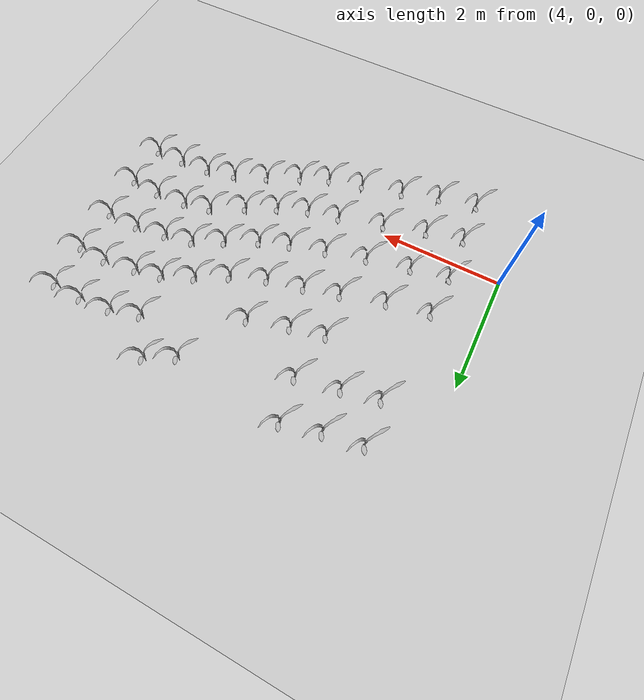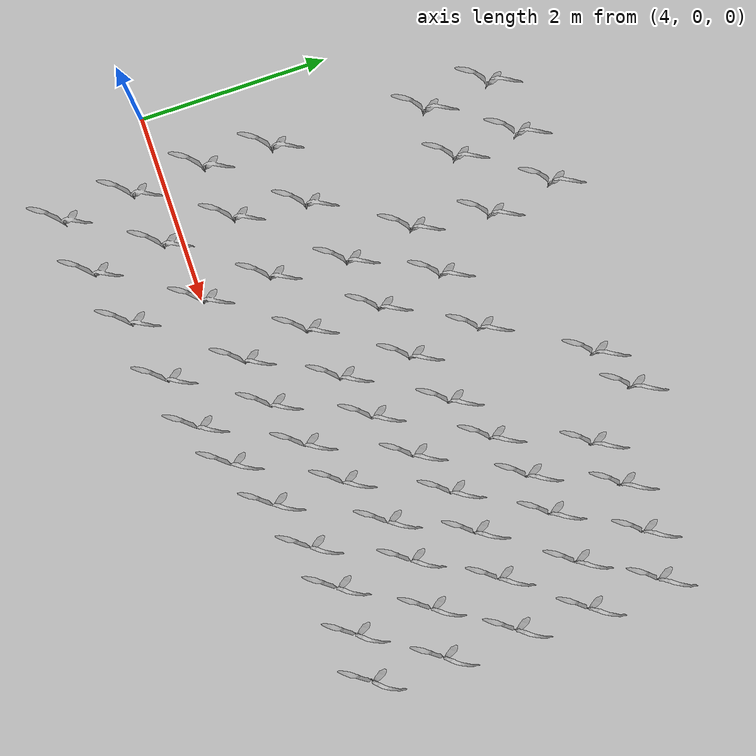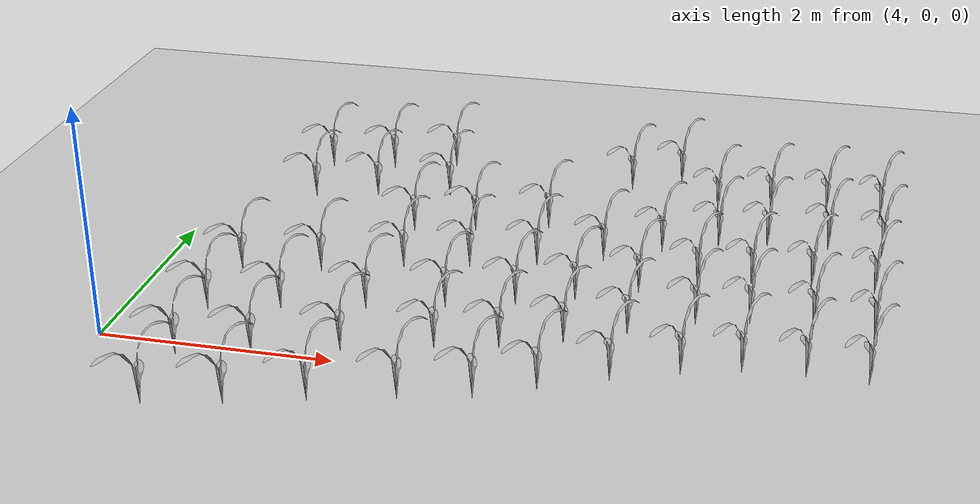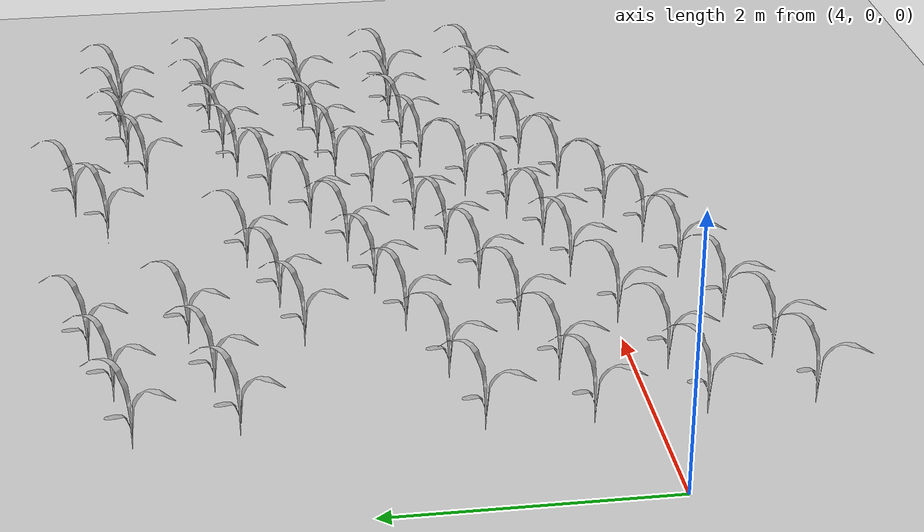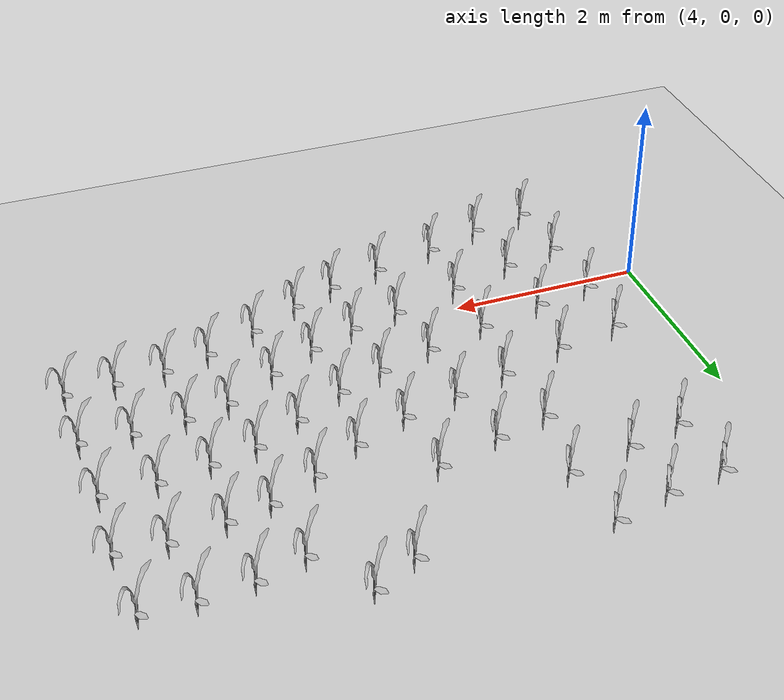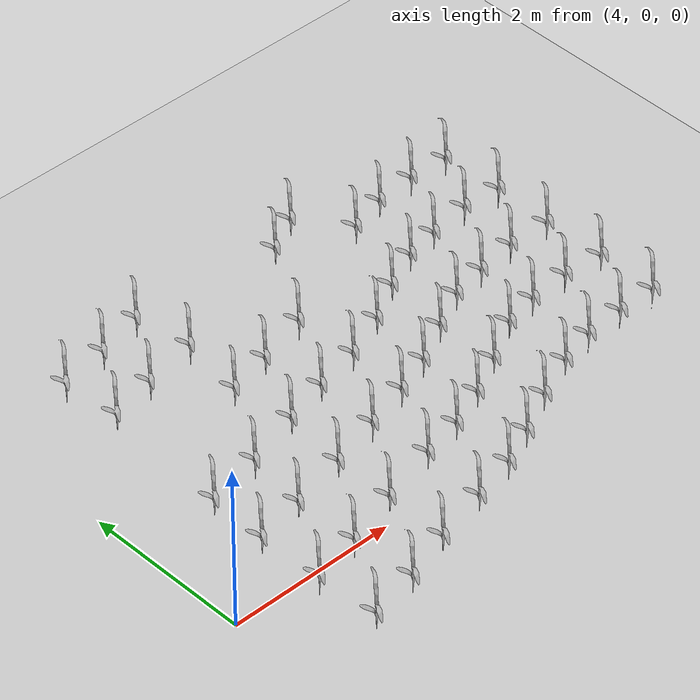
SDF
<sdf version="1.7">
 <world name="default">
  <model name="ground_plane">
   <static>1</static>
   <link name="link">
    <collision name="collision">
     <geometry><plane><normal>0 0 1</normal><size>100 100</size></plane></geometry>
     <surface><friction><ode><mu>100</mu><mu2>50</mu2></ode></friction></surface>
    </collision>
    <visual name="visual">
     <cast_shadows>0</cast_shadows>
     <geometry><plane><normal>0 0 1</normal><size>100 100</size></plane></geometry>
     <material>
      <script><uri>file://media/materials/scripts/gazebo.material</uri><name>Gazebo/Grey</name></script>
     </material>
    </visual>
   </link>
  </model>
  <model name="field_row_full_double">
   <model name="maize_02_clone_142">
    <pose>1.01409 -1.26469 0.000249 0 -0 0</pose>
    <link name="maize_02_link">
     <inertial>
      <pose>0 0 0.01 0 -0 0</pose>
      <mass>0.3</mass>
      <inertia>
       <ixx>0.00334167</ixx>
       <ixy>0</ixy>
       <ixz>0</ixz>
       <iyy>0.00334167</iyy>
       <iyz>0</iyz>
       <izz>1.66667e-05</izz>
      </inertia>
      <pose>0 0 0.1 0 -0 0</pose>
     </inertial>
     <collision name="collision">
      <pose>0 0 0.2 0 -0 0</pose>
      <geometry><box><size>0.02 0.02 0.4</size></box></geometry>
      <surface><friction><ode><mu>10</mu><mu2>10</mu2></ode></friction></surface>
     </collision>
     <visual name="visual">
      <geometry>
       <mesh><uri>model://maize_02/meshes/maize_02.dae</uri><scale>0.683166 0.683166 0.683166</scale></mesh>
      </geometry>
     </visual>
    </link>
   </model>
   <model name="maize_02_clone_143">
    <pose>1.65384 -1.07449 0.000249 0 -0 0</pose>
    <link name="maize_02_link">
     <inertial>
      <pose>0 0 0.01 0 -0 0</pose>
      <mass>0.3</mass>
      <inertia>
       <ixx>0.00334167</ixx>
       <ixy>0</ixy>
       <ixz>0</ixz>
       <iyy>0.00334167</iyy>
       <iyz>0</iyz>
       <izz>1.66667e-05</izz>
      </inertia>
      <pose>0 0 0.1 0 -0 0</pose>
     </inertial>
     <collision name="collision">
      <pose>0 0 0.2 0 -0 0</pose>
      <geometry><box><size>0.02 0.02 0.4</size></box></geometry>
      <surface><friction><ode><mu>10</mu><mu2>10</mu2></ode></friction></surface>
     </collision>
     <visual name="visual">
      <geometry>
       <mesh><uri>model://maize_02/meshes/maize_02.dae</uri><scale>0.683166 0.683166 0.683166</scale></mesh>
      </geometry>
     </visual>
    </link>
   </model>
   <model name="maize_02_clone_144">
    <pose>3.11491 -0.382862 0.000249 0 -0 0</pose>
    <link name="maize_02_link">
     <inertial>
      <pose>0 0 0.01 0 -0 0</pose>
      <mass>0.3</mass>
      <inertia>
       <ixx>0.00334167</ixx>
       <ixy>0</ixy>
       <ixz>0</ixz>
       <iyy>0.00334167</iyy>
       <iyz>0</iyz>
       <izz>1.66667e-05</izz>
      </inertia>
      <pose>0 0 0.1 0 -0 0</pose>
     </inertial>
     <collision name="collision">
      <pose>0 0 0.2 0 -0 0</pose>
      <geometry><box><size>0.02 0.02 0.4</size></box></geometry>
      <surface><friction><ode><mu>10</mu><mu2>10</mu2></ode></friction></surface>
     </collision>
     <visual name="visual">
      <geometry>
       <mesh><uri>model://maize_02/meshes/maize_02.dae</uri><scale>0.683166 0.683166 0.683166</scale></mesh>
      </geometry>
     </visual>
    </link>
   </model>
   <model name="maize_02_clone_145">
    <pose>3.5904 -0.244536 0.000249 0 -0 0</pose>
    <link name="maize_02_link">
     <inertial>
      <pose>0 0 0.01 0 -0 0</pose>
      <mass>0.3</mass>
      <inertia>
       <ixx>0.00334167</ixx>
       <ixy>0</ixy>
       <ixz>0</ixz>
       <iyy>0.00334167</iyy>
       <iyz>0</iyz>
       <izz>1.66667e-05</izz>
      </inertia>
      <pose>0 0 0.1 0 -0 0</pose>
     </inertial>
     <collision name="collision">
      <pose>0 0 0.2 0 -0 0</pose>
      <geometry><box><size>0.02 0.02 0.4</size></box></geometry>
      <surface><friction><ode><mu>10</mu><mu2>10</mu2></ode></friction></surface>
     </collision>
     <visual name="visual">
      <geometry>
       <mesh><uri>model://maize_02/meshes/maize_02.dae</uri><scale>0.683166 0.683166 0.683166</scale></mesh>
      </geometry>
     </visual>
    </link>
   </model>
   <model name="maize_02_clone_146">
    <pose>4.10048 -0.192664 0.000249 0 -0 0</pose>
    <link name="maize_02_link">
     <inertial>
      <pose>0 0 0.01 0 -0 0</pose>
      <mass>0.3</mass>
      <inertia>
       <ixx>0.00334167</ixx>
       <ixy>0</ixy>
       <ixz>0</ixz>
       <iyy>0.00334167</iyy>
       <iyz>0</iyz>
       <izz>1.66667e-05</izz>
      </inertia>
      <pose>0 0 0.1 0 -0 0</pose>
     </inertial>
     <collision name="collision">
      <pose>0 0 0.2 0 -0 0</pose>
      <geometry><box><size>0.02 0.02 0.4</size></box></geometry>
      <surface><friction><ode><mu>10</mu><mu2>10</mu2></ode></friction></surface>
     </collision>
     <visual name="visual">
      <geometry>
       <mesh><uri>model://maize_02/meshes/maize_02.dae</uri><scale>0.683166 0.683166 0.683166</scale></mesh>
      </geometry>
     </visual>
    </link>
   </model>
   <model name="maize_02_clone_147">
    <pose>4.59326 -0.209955 0.000249 0 -0 0</pose>
    <link name="maize_02_link">
     <inertial>
      <pose>0 0 0.01 0 -0 0</pose>
      <mass>0.3</mass>
      <inertia>
       <ixx>0.00334167</ixx>
       <ixy>0</ixy>
       <ixz>0</ixz>
       <iyy>0.00334167</iyy>
       <iyz>0</iyz>
       <izz>1.66667e-05</izz>
      </inertia>
      <pose>0 0 0.1 0 -0 0</pose>
     </inertial>
     <collision name="collision">
      <pose>0 0 0.2 0 -0 0</pose>
      <geometry><box><size>0.02 0.02 0.4</size></box></geometry>
      <surface><friction><ode><mu>10</mu><mu2>10</mu2></ode></friction></surface>
     </collision>
     <visual name="visual">
      <geometry>
       <mesh><uri>model://maize_02/meshes/maize_02.dae</uri><scale>0.683166 0.683166 0.683166</scale></mesh>
      </geometry>
     </visual>
    </link>
   </model>
   <model name="maize_02_clone_152">
    <pose>2.69993 0.179087 0.000249 0 -0 0</pose>
    <link name="maize_02_link">
     <inertial>
      <pose>0 0 0.01 0 -0 0</pose>
      <mass>0.3</mass>
      <inertia>
       <ixx>0.00334167</ixx>
       <ixy>0</ixy>
       <ixz>0</ixz>
       <iyy>0.00334167</iyy>
       <iyz>0</iyz>
       <izz>1.66667e-05</izz>
      </inertia>
      <pose>0 0 0.1 0 -0 0</pose>
     </inertial>
     <collision name="collision">
      <pose>0 0 0.2 0 -0 0</pose>
      <geometry><box><size>0.02 0.02 0.4</size></box></geometry>
      <surface><friction><ode><mu>10</mu><mu2>10</mu2></ode></friction></surface>
     </collision>
     <visual name="visual">
      <geometry>
       <mesh><uri>model://maize_02/meshes/maize_02.dae</uri><scale>0.683166 0.683166 0.683166</scale></mesh>
      </geometry>
     </visual>
    </link>
   </model>
   <model name="maize_02_clone_153">
    <pose>2.25902 -0.062983 0.000249 0 -0 0</pose>
    <link name="maize_02_link">
     <inertial>
      <pose>0 0 0.01 0 -0 0</pose>
      <mass>0.3</mass>
      <inertia>
       <ixx>0.00334167</ixx>
       <ixy>0</ixy>
       <ixz>0</ixz>
       <iyy>0.00334167</iyy>
       <iyz>0</iyz>
       <izz>1.66667e-05</izz>
      </inertia>
      <pose>0 0 0.1 0 -0 0</pose>
     </inertial>
     <collision name="collision">
      <pose>0 0 0.2 0 -0 0</pose>
      <geometry><box><size>0.02 0.02 0.4</size></box></geometry>
      <surface><friction><ode><mu>10</mu><mu2>10</mu2></ode></friction></surface>
     </collision>
     <visual name="visual">
      <geometry>
       <mesh><uri>model://maize_02/meshes/maize_02.dae</uri><scale>0.683166 0.683166 0.683166</scale></mesh>
      </geometry>
     </visual>
    </link>
   </model>
   <model name="maize_02_clone_18">
    <pose>-0.201208 -3.06424 0.000249 0 -0 0</pose>
    <link name="maize_02_link">
     <inertial>
      <pose>0 0 0.01 0 -0 0</pose>
      <mass>0.3</mass>
      <inertia>
       <ixx>0.00334167</ixx>
       <ixy>0</ixy>
       <ixz>0</ixz>
       <iyy>0.00334167</iyy>
       <iyz>0</iyz>
       <izz>1.66667e-05</izz>
      </inertia>
      <pose>0 0 0.1 0 -0 0</pose>
     </inertial>
     <collision name="collision">
      <pose>0 0 0.2 0 -0 0</pose>
      <geometry><box><size>0.02 0.02 0.4</size></box></geometry>
      <surface><friction><ode><mu>10</mu><mu2>10</mu2></ode></friction></surface>
     </collision>
     <visual name="visual">
      <geometry>
       <mesh><uri>model://maize_02/meshes/maize_02.dae</uri><scale>0.683166 0.683166 0.683166</scale></mesh>
      </geometry>
     </visual>
    </link>
   </model>
   <model name="maize_02_clone_19">
    <pose>-0.800069 -3.18604 0.000249 0 -0 0</pose>
    <link name="maize_02_link">
     <inertial>
      <pose>0 0 0.01 0 -0 0</pose>
      <mass>0.3</mass>
      <inertia>
       <ixx>0.00334167</ixx>
       <ixy>0</ixy>
       <ixz>0</ixz>
       <iyy>0.00334167</iyy>
       <iyz>0</iyz>
       <izz>1.66667e-05</izz>
      </inertia>
      <pose>0 0 0.1 0 -0 0</pose>
     </inertial>
     <collision name="collision">
      <pose>0 0 0.2 0 -0 0</pose>
      <geometry><box><size>0.02 0.02 0.4</size></box></geometry>
      <surface><friction><ode><mu>10</mu><mu2>10</mu2></ode></friction></surface>
     </collision>
     <visual name="visual">
      <geometry>
       <mesh><uri>model://maize_02/meshes/maize_02.dae</uri><scale>0.683166 0.683166 0.683166</scale></mesh>
      </geometry>
     </visual>
    </link>
   </model>
   <model name="maize_02_clone_36">
    <pose>-0.769618 -2.46538 0.000249 0 -0 0</pose>
    <link name="maize_02_link">
     <inertial>
      <pose>0 0 0.01 0 -0 0</pose>
      <mass>0.3</mass>
      <inertia>
       <ixx>0.00334167</ixx>
       <ixy>0</ixy>
       <ixz>0</ixz>
       <iyy>0.00334167</iyy>
       <iyz>0</iyz>
       <izz>1.66667e-05</izz>
      </inertia>
      <pose>0 0 0.1 0 -0 0</pose>
     </inertial>
     <collision name="collision">
      <pose>0 0 0.2 0 -0 0</pose>
      <geometry><box><size>0.02 0.02 0.4</size></box></geometry>
      <surface><friction><ode><mu>10</mu><mu2>10</mu2></ode></friction></surface>
     </collision>
     <visual name="visual">
      <geometry>
       <mesh><uri>model://maize_02/meshes/maize_02.dae</uri><scale>0.683166 0.683166 0.683166</scale></mesh>
      </geometry>
     </visual>
    </link>
   </model>
   <model name="maize_02_clone_37">
    <pose>-0.099705 -2.32328 0.000249 0 -0 0</pose>
    <link name="maize_02_link">
     <inertial>
      <pose>0 0 0.01 0 -0 0</pose>
      <mass>0.3</mass>
      <inertia>
       <ixx>0.00334167</ixx>
       <ixy>0</ixy>
       <ixz>0</ixz>
       <iyy>0.00334167</iyy>
       <iyz>0</iyz>
       <izz>1.66667e-05</izz>
      </inertia>
      <pose>0 0 0.1 0 -0 0</pose>
     </inertial>
     <collision name="collision">
      <pose>0 0 0.2 0 -0 0</pose>
      <geometry><box><size>0.02 0.02 0.4</size></box></geometry>
      <surface><friction><ode><mu>10</mu><mu2>10</mu2></ode></friction></surface>
     </collision>
     <visual name="visual">
      <geometry>
       <mesh><uri>model://maize_02/meshes/maize_02.dae</uri><scale>0.683166 0.683166 0.683166</scale></mesh>
      </geometry>
     </visual>
    </link>
   </model>
   <model name="maize_02_clone_38">
    <pose>0.485491 -4.38018 0.000249 0 -0 0</pose>
    <link name="maize_02_link">
     <inertial>
      <pose>0 0 0.01 0 -0 0</pose>
      <mass>0.3</mass>
      <inertia>
       <ixx>0.00334167</ixx>
       <ixy>0</ixy>
       <ixz>0</ixz>
       <iyy>0.00334167</iyy>
       <iyz>0</iyz>
       <izz>1.66667e-05</izz>
      </inertia>
      <pose>0 0 0.1 0 -0 0</pose>
     </inertial>
     <collision name="collision">
      <pose>0 0 0.2 0 -0 0</pose>
      <geometry><box><size>0.02 0.02 0.4</size></box></geometry>
      <surface><friction><ode><mu>10</mu><mu2>10</mu2></ode></friction></surface>
     </collision>
     <visual name="visual">
      <geometry>
       <mesh><uri>model://maize_02/meshes/maize_02.dae</uri><scale>0.683166 0.683166 0.683166</scale></mesh>
      </geometry>
     </visual>
    </link>
   </model>
   <model name="maize_02_clone_39">
    <pose>1.14712 -4.21214 0.000249 0 -0 0</pose>
    <link name="maize_02_link">
     <inertial>
      <pose>0 0 0.01 0 -0 0</pose>
      <mass>0.3</mass>
      <inertia>
       <ixx>0.00334167</ixx>
       <ixy>0</ixy>
       <ixz>0</ixz>
       <iyy>0.00334167</iyy>
       <iyz>0</iyz>
       <izz>1.66667e-05</izz>
      </inertia>
      <pose>0 0 0.1 0 -0 0</pose>
     </inertial>
     <collision name="collision">
      <pose>0 0 0.2 0 -0 0</pose>
      <geometry><box><size>0.02 0.02 0.4</size></box></geometry>
      <surface><friction><ode><mu>10</mu><mu2>10</mu2></ode></friction></surface>
     </collision>
     <visual name="visual">
      <geometry>
       <mesh><uri>model://maize_02/meshes/maize_02.dae</uri><scale>0.683166 0.683166 0.683166</scale></mesh>
      </geometry>
     </visual>
    </link>
   </model>
   <model name="maize_02_clone_40">
    <pose>1.70023 -4.06622 0.000249 0 -0 0</pose>
    <link name="maize_02_link">
     <inertial>
      <pose>0 0 0.01 0 -0 0</pose>
      <mass>0.3</mass>
      <inertia>
       <ixx>0.00334167</ixx>
       <ixy>0</ixy>
       <ixz>0</ixz>
       <iyy>0.00334167</iyy>
       <iyz>0</iyz>
       <izz>1.66667e-05</izz>
      </inertia>
      <pose>0 0 0.1 0 -0 0</pose>
     </inertial>
     <collision name="collision">
      <pose>0 0 0.2 0 -0 0</pose>
      <geometry><box><size>0.02 0.02 0.4</size></box></geometry>
      <surface><friction><ode><mu>10</mu><mu2>10</mu2></ode></friction></surface>
     </collision>
     <visual name="visual">
      <geometry>
       <mesh><uri>model://maize_02/meshes/maize_02.dae</uri><scale>0.683166 0.683166 0.683166</scale></mesh>
      </geometry>
     </visual>
    </link>
   </model>
   <model name="maize_02_clone_41">
    <pose>2.15731 -3.86229 0.000249 0 -0 0</pose>
    <link name="maize_02_link">
     <inertial>
      <pose>0 0 0.01 0 -0 0</pose>
      <mass>0.3</mass>
      <inertia>
       <ixx>0.00334167</ixx>
       <ixy>0</ixy>
       <ixz>0</ixz>
       <iyy>0.00334167</iyy>
       <iyz>0</iyz>
       <izz>1.66667e-05</izz>
      </inertia>
      <pose>0 0 0.1 0 -0 0</pose>
     </inertial>
     <collision name="collision">
      <pose>0 0 0.2 0 -0 0</pose>
      <geometry><box><size>0.02 0.02 0.4</size></box></geometry>
      <surface><friction><ode><mu>10</mu><mu2>10</mu2></ode></friction></surface>
     </collision>
     <visual name="visual">
      <geometry>
       <mesh><uri>model://maize_02/meshes/maize_02.dae</uri><scale>0.683166 0.683166 0.683166</scale></mesh>
      </geometry>
     </visual>
    </link>
   </model>
   <model name="maize_02_clone_42">
    <pose>2.67082 -3.59811 0.000249 0 -0 0</pose>
    <link name="maize_02_link">
     <inertial>
      <pose>0 0 0.01 0 -0 0</pose>
      <mass>0.3</mass>
      <inertia>
       <ixx>0.00334167</ixx>
       <ixy>0</ixy>
       <ixz>0</ixz>
       <iyy>0.00334167</iyy>
       <iyz>0</iyz>
       <izz>1.66667e-05</izz>
      </inertia>
      <pose>0 0 0.1 0 -0 0</pose>
     </inertial>
     <collision name="collision">
      <pose>0 0 0.2 0 -0 0</pose>
      <geometry><box><size>0.02 0.02 0.4</size></box></geometry>
      <surface><friction><ode><mu>10</mu><mu2>10</mu2></ode></friction></surface>
     </collision>
     <visual name="visual">
      <geometry>
       <mesh><uri>model://maize_02/meshes/maize_02.dae</uri><scale>0.683166 0.683166 0.683166</scale></mesh>
      </geometry>
     </visual>
    </link>
   </model>
   <model name="maize_02_clone_43">
    <pose>3.1913 -3.37906 0.000249 0 -0 0</pose>
    <link name="maize_02_link">
     <inertial>
      <pose>0 0 0.01 0 -0 0</pose>
      <mass>0.3</mass>
      <inertia>
       <ixx>0.00334167</ixx>
       <ixy>0</ixy>
       <ixz>0</ixz>
       <iyy>0.00334167</iyy>
       <iyz>0</iyz>
       <izz>1.66667e-05</izz>
      </inertia>
      <pose>0 0 0.1 0 -0 0</pose>
     </inertial>
     <collision name="collision">
      <pose>0 0 0.2 0 -0 0</pose>
      <geometry><box><size>0.02 0.02 0.4</size></box></geometry>
      <surface><friction><ode><mu>10</mu><mu2>10</mu2></ode></friction></surface>
     </collision>
     <visual name="visual">
      <geometry>
       <mesh><uri>model://maize_02/meshes/maize_02.dae</uri><scale>0.683166 0.683166 0.683166</scale></mesh>
      </geometry>
     </visual>
    </link>
   </model>
   <model name="maize_02_clone_44">
    <pose>3.65378 -3.25603 0.000249 0 -0 0</pose>
    <link name="maize_02_link">
     <inertial>
      <pose>0 0 0.01 0 -0 0</pose>
      <mass>0.3</mass>
      <inertia>
       <ixx>0.00334167</ixx>
       <ixy>0</ixy>
       <ixz>0</ixz>
       <iyy>0.00334167</iyy>
       <iyz>0</iyz>
       <izz>1.66667e-05</izz>
      </inertia>
      <pose>0 0 0.1 0 -0 0</pose>
     </inertial>
     <collision name="collision">
      <pose>0 0 0.2 0 -0 0</pose>
      <geometry><box><size>0.02 0.02 0.4</size></box></geometry>
      <surface><friction><ode><mu>10</mu><mu2>10</mu2></ode></friction></surface>
     </collision>
     <visual name="visual">
      <geometry>
       <mesh><uri>model://maize_02/meshes/maize_02.dae</uri><scale>0.683166 0.683166 0.683166</scale></mesh>
      </geometry>
     </visual>
    </link>
   </model>
   <model name="maize_02_clone_45">
    <pose>4.14811 -3.22402 0.000249 0 -0 0</pose>
    <link name="maize_02_link">
     <inertial>
      <pose>0 0 0.01 0 -0 0</pose>
      <mass>0.3</mass>
      <inertia>
       <ixx>0.00334167</ixx>
       <ixy>0</ixy>
       <ixz>0</ixz>
       <iyy>0.00334167</iyy>
       <iyz>0</iyz>
       <izz>1.66667e-05</izz>
      </inertia>
      <pose>0 0 0.1 0 -0 0</pose>
     </inertial>
     <collision name="collision">
      <pose>0 0 0.2 0 -0 0</pose>
      <geometry><box><size>0.02 0.02 0.4</size></box></geometry>
      <surface><friction><ode><mu>10</mu><mu2>10</mu2></ode></friction></surface>
     </collision>
     <visual name="visual">
      <geometry>
       <mesh><uri>model://maize_02/meshes/maize_02.dae</uri><scale>0.683166 0.683166 0.683166</scale></mesh>
      </geometry>
     </visual>
    </link>
   </model>
   <model name="maize_02_clone_46">
    <pose>4.6323 -3.21845 0.000249 0 -0 0</pose>
    <link name="maize_02_link">
     <inertial>
      <pose>0 0 0.01 0 -0 0</pose>
      <mass>0.3</mass>
      <inertia>
       <ixx>0.00334167</ixx>
       <ixy>0</ixy>
       <ixz>0</ixz>
       <iyy>0.00334167</iyy>
       <iyz>0</iyz>
       <izz>1.66667e-05</izz>
      </inertia>
      <pose>0 0 0.1 0 -0 0</pose>
     </inertial>
     <collision name="collision">
      <pose>0 0 0.2 0 -0 0</pose>
      <geometry><box><size>0.02 0.02 0.4</size></box></geometry>
      <surface><friction><ode><mu>10</mu><mu2>10</mu2></ode></friction></surface>
     </collision>
     <visual name="visual">
      <geometry>
       <mesh><uri>model://maize_02/meshes/maize_02.dae</uri><scale>0.683166 0.683166 0.683166</scale></mesh>
      </geometry>
     </visual>
    </link>
   </model>
   <model name="maize_02_clone_47">
    <pose>4.63816 -2.47486 0.000249 0 -0 0</pose>
    <link name="maize_02_link">
     <inertial>
      <pose>0 0 0.01 0 -0 0</pose>
      <mass>0.3</mass>
      <inertia>
       <ixx>0.00334167</ixx>
       <ixy>0</ixy>
       <ixz>0</ixz>
       <iyy>0.00334167</iyy>
       <iyz>0</iyz>
       <izz>1.66667e-05</izz>
      </inertia>
      <pose>0 0 0.1 0 -0 0</pose>
     </inertial>
     <collision name="collision">
      <pose>0 0 0.2 0 -0 0</pose>
      <geometry><box><size>0.02 0.02 0.4</size></box></geometry>
      <surface><friction><ode><mu>10</mu><mu2>10</mu2></ode></friction></surface>
     </collision>
     <visual name="visual">
      <geometry>
       <mesh><uri>model://maize_02/meshes/maize_02.dae</uri><scale>0.683166 0.683166 0.683166</scale></mesh>
      </geometry>
     </visual>
    </link>
   </model>
   <model name="maize_02_clone_48">
    <pose>4.14698 -2.43531 0.000249 0 -0 0</pose>
    <link name="maize_02_link">
     <inertial>
      <pose>0 0 0.01 0 -0 0</pose>
      <mass>0.3</mass>
      <inertia>
       <ixx>0.00334167</ixx>
       <ixy>0</ixy>
       <ixz>0</ixz>
       <iyy>0.00334167</iyy>
       <iyz>0</iyz>
       <izz>1.66667e-05</izz>
      </inertia>
      <pose>0 0 0.1 0 -0 0</pose>
     </inertial>
     <collision name="collision">
      <pose>0 0 0.2 0 -0 0</pose>
      <geometry><box><size>0.02 0.02 0.4</size></box></geometry>
      <surface><friction><ode><mu>10</mu><mu2>10</mu2></ode></friction></surface>
     </collision>
     <visual name="visual">
      <geometry>
       <mesh><uri>model://maize_02/meshes/maize_02.dae</uri><scale>0.683166 0.683166 0.683166</scale></mesh>
      </geometry>
     </visual>
    </link>
   </model>
   <model name="maize_02_clone_49">
    <pose>3.63438 -2.47547 0.000249 0 -0 0</pose>
    <link name="maize_02_link">
     <inertial>
      <pose>0 0 0.01 0 -0 0</pose>
      <mass>0.3</mass>
      <inertia>
       <ixx>0.00334167</ixx>
       <ixy>0</ixy>
       <ixz>0</ixz>
       <iyy>0.00334167</iyy>
       <iyz>0</iyz>
       <izz>1.66667e-05</izz>
      </inertia>
      <pose>0 0 0.1 0 -0 0</pose>
     </inertial>
     <collision name="collision">
      <pose>0 0 0.2 0 -0 0</pose>
      <geometry><box><size>0.02 0.02 0.4</size></box></geometry>
      <surface><friction><ode><mu>10</mu><mu2>10</mu2></ode></friction></surface>
     </collision>
     <visual name="visual">
      <geometry>
       <mesh><uri>model://maize_02/meshes/maize_02.dae</uri><scale>0.683166 0.683166 0.683166</scale></mesh>
      </geometry>
     </visual>
    </link>
   </model>
   <model name="maize_02_clone_50">
    <pose>3.19991 -2.57285 0.000249 0 -0 0</pose>
    <link name="maize_02_link">
     <inertial>
      <pose>0 0 0.01 0 -0 0</pose>
      <mass>0.3</mass>
      <inertia>
       <ixx>0.00334167</ixx>
       <ixy>0</ixy>
       <ixz>0</ixz>
       <iyy>0.00334167</iyy>
       <iyz>0</iyz>
       <izz>1.66667e-05</izz>
      </inertia>
      <pose>0 0 0.1 0 -0 0</pose>
     </inertial>
     <collision name="collision">
      <pose>0 0 0.2 0 -0 0</pose>
      <geometry><box><size>0.02 0.02 0.4</size></box></geometry>
      <surface><friction><ode><mu>10</mu><mu2>10</mu2></ode></friction></surface>
     </collision>
     <visual name="visual">
      <geometry>
       <mesh><uri>model://maize_02/meshes/maize_02.dae</uri><scale>0.683166 0.683166 0.683166</scale></mesh>
      </geometry>
     </visual>
    </link>
   </model>
   <model name="maize_02_clone_51">
    <pose>2.68522 -2.86386 0.000249 0 -0 0</pose>
    <link name="maize_02_link">
     <inertial>
      <pose>0 0 0.01 0 -0 0</pose>
      <mass>0.3</mass>
      <inertia>
       <ixx>0.00334167</ixx>
       <ixy>0</ixy>
       <ixz>0</ixz>
       <iyy>0.00334167</iyy>
       <iyz>0</iyz>
       <izz>1.66667e-05</izz>
      </inertia>
      <pose>0 0 0.1 0 -0 0</pose>
     </inertial>
     <collision name="collision">
      <pose>0 0 0.2 0 -0 0</pose>
      <geometry><box><size>0.02 0.02 0.4</size></box></geometry>
      <surface><friction><ode><mu>10</mu><mu2>10</mu2></ode></friction></surface>
     </collision>
     <visual name="visual">
      <geometry>
       <mesh><uri>model://maize_02/meshes/maize_02.dae</uri><scale>0.683166 0.683166 0.683166</scale></mesh>
      </geometry>
     </visual>
    </link>
   </model>
   <model name="maize_02_clone_52">
    <pose>2.20828 -3.11172 0.000249 0 -0 0</pose>
    <link name="maize_02_link">
     <inertial>
      <pose>0 0 0.01 0 -0 0</pose>
      <mass>0.3</mass>
      <inertia>
       <ixx>0.00334167</ixx>
       <ixy>0</ixy>
       <ixz>0</ixz>
       <iyy>0.00334167</iyy>
       <iyz>0</iyz>
       <izz>1.66667e-05</izz>
      </inertia>
      <pose>0 0 0.1 0 -0 0</pose>
     </inertial>
     <collision name="collision">
      <pose>0 0 0.2 0 -0 0</pose>
      <geometry><box><size>0.02 0.02 0.4</size></box></geometry>
      <surface><friction><ode><mu>10</mu><mu2>10</mu2></ode></friction></surface>
     </collision>
     <visual name="visual">
      <geometry>
       <mesh><uri>model://maize_02/meshes/maize_02.dae</uri><scale>0.683166 0.683166 0.683166</scale></mesh>
      </geometry>
     </visual>
    </link>
   </model>
   <model name="maize_02_clone_53">
    <pose>1.72476 -3.30552 0.000249 0 -0 0</pose>
    <link name="maize_02_link">
     <inertial>
      <pose>0 0 0.01 0 -0 0</pose>
      <mass>0.3</mass>
      <inertia>
       <ixx>0.00334167</ixx>
       <ixy>0</ixy>
       <ixz>0</ixz>
       <iyy>0.00334167</iyy>
       <iyz>0</iyz>
       <izz>1.66667e-05</izz>
      </inertia>
      <pose>0 0 0.1 0 -0 0</pose>
     </inertial>
     <collision name="collision">
      <pose>0 0 0.2 0 -0 0</pose>
      <geometry><box><size>0.02 0.02 0.4</size></box></geometry>
      <surface><friction><ode><mu>10</mu><mu2>10</mu2></ode></friction></surface>
     </collision>
     <visual name="visual">
      <geometry>
       <mesh><uri>model://maize_02/meshes/maize_02.dae</uri><scale>0.683166 0.683166 0.683166</scale></mesh>
      </geometry>
     </visual>
    </link>
   </model>
   <model name="maize_02_clone_54">
    <pose>1.21795 -3.41764 0.000249 0 -0 0</pose>
    <link name="maize_02_link">
     <inertial>
      <pose>0 0 0.01 0 -0 0</pose>
      <mass>0.3</mass>
      <inertia>
       <ixx>0.00334167</ixx>
       <ixy>0</ixy>
       <ixz>0</ixz>
       <iyy>0.00334167</iyy>
       <iyz>0</iyz>
       <izz>1.66667e-05</izz>
      </inertia>
      <pose>0 0 0.1 0 -0 0</pose>
     </inertial>
     <collision name="collision">
      <pose>0 0 0.2 0 -0 0</pose>
      <geometry><box><size>0.02 0.02 0.4</size></box></geometry>
      <surface><friction><ode><mu>10</mu><mu2>10</mu2></ode></friction></surface>
     </collision>
     <visual name="visual">
      <geometry>
       <mesh><uri>model://maize_02/meshes/maize_02.dae</uri><scale>0.683166 0.683166 0.683166</scale></mesh>
      </geometry>
     </visual>
    </link>
   </model>
   <model name="maize_02_clone_55">
    <pose>0.501077 -3.61909 0.000249 0 -0 0</pose>
    <link name="maize_02_link">
     <inertial>
      <pose>0 0 0.01 0 -0 0</pose>
      <mass>0.3</mass>
      <inertia>
       <ixx>0.00334167</ixx>
       <ixy>0</ixy>
       <ixz>0</ixz>
       <iyy>0.00334167</iyy>
       <iyz>0</iyz>
       <izz>1.66667e-05</izz>
      </inertia>
      <pose>0 0 0.1 0 -0 0</pose>
     </inertial>
     <collision name="collision">
      <pose>0 0 0.2 0 -0 0</pose>
      <geometry><box><size>0.02 0.02 0.4</size></box></geometry>
      <surface><friction><ode><mu>10</mu><mu2>10</mu2></ode></friction></surface>
     </collision>
     <visual name="visual">
      <geometry>
       <mesh><uri>model://maize_02/meshes/maize_02.dae</uri><scale>0.683166 0.683166 0.683166</scale></mesh>
      </geometry>
     </visual>
    </link>
   </model>
   <model name="maize_02_clone_56">
    <pose>0.48786 -2.90154 0.000249 0 -0 0</pose>
    <link name="maize_02_link">
     <inertial>
      <pose>0 0 0.01 0 -0 0</pose>
      <mass>0.3</mass>
      <inertia>
       <ixx>0.00334167</ixx>
       <ixy>0</ixy>
       <ixz>0</ixz>
       <iyy>0.00334167</iyy>
       <iyz>0</iyz>
       <izz>1.66667e-05</izz>
      </inertia>
      <pose>0 0 0.1 0 -0 0</pose>
     </inertial>
     <collision name="collision">
      <pose>0 0 0.2 0 -0 0</pose>
      <geometry><box><size>0.02 0.02 0.4</size></box></geometry>
      <surface><friction><ode><mu>10</mu><mu2>10</mu2></ode></friction></surface>
     </collision>
     <visual name="visual">
      <geometry>
       <mesh><uri>model://maize_02/meshes/maize_02.dae</uri><scale>0.683166 0.683166 0.683166</scale></mesh>
      </geometry>
     </visual>
    </link>
   </model>
   <model name="maize_02_clone_57">
    <pose>1.12305 -2.72338 0.000249 0 -0 0</pose>
    <link name="maize_02_link">
     <inertial>
      <pose>0 0 0.01 0 -0 0</pose>
      <mass>0.3</mass>
      <inertia>
       <ixx>0.00334167</ixx>
       <ixy>0</ixy>
       <ixz>0</ixz>
       <iyy>0.00334167</iyy>
       <iyz>0</iyz>
       <izz>1.66667e-05</izz>
      </inertia>
      <pose>0 0 0.1 0 -0 0</pose>
     </inertial>
     <collision name="collision">
      <pose>0 0 0.2 0 -0 0</pose>
      <geometry><box><size>0.02 0.02 0.4</size></box></geometry>
      <surface><friction><ode><mu>10</mu><mu2>10</mu2></ode></friction></surface>
     </collision>
     <visual name="visual">
      <geometry>
       <mesh><uri>model://maize_02/meshes/maize_02.dae</uri><scale>0.683166 0.683166 0.683166</scale></mesh>
      </geometry>
     </visual>
    </link>
   </model>
   <model name="maize_02_clone_58">
    <pose>1.68589 -2.55996 0.000249 0 -0 0</pose>
    <link name="maize_02_link">
     <inertial>
      <pose>0 0 0.01 0 -0 0</pose>
      <mass>0.3</mass>
      <inertia>
       <ixx>0.00334167</ixx>
       <ixy>0</ixy>
       <ixz>0</ixz>
       <iyy>0.00334167</iyy>
       <iyz>0</iyz>
       <izz>1.66667e-05</izz>
      </inertia>
      <pose>0 0 0.1 0 -0 0</pose>
     </inertial>
     <collision name="collision">
      <pose>0 0 0.2 0 -0 0</pose>
      <geometry><box><size>0.02 0.02 0.4</size></box></geometry>
      <surface><friction><ode><mu>10</mu><mu2>10</mu2></ode></friction></surface>
     </collision>
     <visual name="visual">
      <geometry>
       <mesh><uri>model://maize_02/meshes/maize_02.dae</uri><scale>0.683166 0.683166 0.683166</scale></mesh>
      </geometry>
     </visual>
    </link>
   </model>
   <model name="maize_02_clone_59">
    <pose>2.15968 -2.38366 0.000249 0 -0 0</pose>
    <link name="maize_02_link">
     <inertial>
      <pose>0 0 0.01 0 -0 0</pose>
      <mass>0.3</mass>
      <inertia>
       <ixx>0.00334167</ixx>
       <ixy>0</ixy>
       <ixz>0</ixz>
       <iyy>0.00334167</iyy>
       <iyz>0</iyz>
       <izz>1.66667e-05</izz>
      </inertia>
      <pose>0 0 0.1 0 -0 0</pose>
     </inertial>
     <collision name="collision">
      <pose>0 0 0.2 0 -0 0</pose>
      <geometry><box><size>0.02 0.02 0.4</size></box></geometry>
      <surface><friction><ode><mu>10</mu><mu2>10</mu2></ode></friction></surface>
     </collision>
     <visual name="visual">
      <geometry>
       <mesh><uri>model://maize_02/meshes/maize_02.dae</uri><scale>0.683166 0.683166 0.683166</scale></mesh>
      </geometry>
     </visual>
    </link>
   </model>
   <model name="maize_02_clone_6">
    <pose>-0.718868 -4.70857 0.000249 0 -0 0</pose>
    <link name="maize_02_link">
     <inertial>
      <pose>0 0 0.01 0 -0 0</pose>
      <mass>0.3</mass>
      <inertia>
       <ixx>0.00334167</ixx>
       <ixy>0</ixy>
       <ixz>0</ixz>
       <iyy>0.00334167</iyy>
       <iyz>0</iyz>
       <izz>1.66667e-05</izz>
      </inertia>
      <pose>0 0 0.1 0 -0 0</pose>
     </inertial>
     <collision name="collision">
      <pose>0 0 0.2 0 -0 0</pose>
      <geometry><box><size>0.02 0.02 0.4</size></box></geometry>
      <surface><friction><ode><mu>10</mu><mu2>10</mu2></ode></friction></surface>
     </collision>
     <visual name="visual">
      <geometry>
       <mesh><uri>model://maize_02/meshes/maize_02.dae</uri><scale>0.683166 0.683166 0.683166</scale></mesh>
      </geometry>
     </visual>
    </link>
   </model>
   <model name="maize_02_clone_60">
    <pose>2.6553 -2.11869 0.000249 0 -0 0</pose>
    <link name="maize_02_link">
     <inertial>
      <pose>0 0 0.01 0 -0 0</pose>
      <mass>0.3</mass>
      <inertia>
       <ixx>0.00334167</ixx>
       <ixy>0</ixy>
       <ixz>0</ixz>
       <iyy>0.00334167</iyy>
       <iyz>0</iyz>
       <izz>1.66667e-05</izz>
      </inertia>
      <pose>0 0 0.1 0 -0 0</pose>
     </inertial>
     <collision name="collision">
      <pose>0 0 0.2 0 -0 0</pose>
      <geometry><box><size>0.02 0.02 0.4</size></box></geometry>
      <surface><friction><ode><mu>10</mu><mu2>10</mu2></ode></friction></surface>
     </collision>
     <visual name="visual">
      <geometry>
       <mesh><uri>model://maize_02/meshes/maize_02.dae</uri><scale>0.683166 0.683166 0.683166</scale></mesh>
      </geometry>
     </visual>
    </link>
   </model>
   <model name="maize_02_clone_61">
    <pose>3.1229 -1.87938 0.000249 0 -0 0</pose>
    <link name="maize_02_link">
     <inertial>
      <pose>0 0 0.01 0 -0 0</pose>
      <mass>0.3</mass>
      <inertia>
       <ixx>0.00334167</ixx>
       <ixy>0</ixy>
       <ixz>0</ixz>
       <iyy>0.00334167</iyy>
       <iyz>0</iyz>
       <izz>1.66667e-05</izz>
      </inertia>
      <pose>0 0 0.1 0 -0 0</pose>
     </inertial>
     <collision name="collision">
      <pose>0 0 0.2 0 -0 0</pose>
      <geometry><box><size>0.02 0.02 0.4</size></box></geometry>
      <surface><friction><ode><mu>10</mu><mu2>10</mu2></ode></friction></surface>
     </collision>
     <visual name="visual">
      <geometry>
       <mesh><uri>model://maize_02/meshes/maize_02.dae</uri><scale>0.683166 0.683166 0.683166</scale></mesh>
      </geometry>
     </visual>
    </link>
   </model>
   <model name="maize_02_clone_62">
    <pose>3.57526 -1.78279 0.000249 0 -0 0</pose>
    <link name="maize_02_link">
     <inertial>
      <pose>0 0 0.01 0 -0 0</pose>
      <mass>0.3</mass>
      <inertia>
       <ixx>0.00334167</ixx>
       <ixy>0</ixy>
       <ixz>0</ixz>
       <iyy>0.00334167</iyy>
       <iyz>0</iyz>
       <izz>1.66667e-05</izz>
      </inertia>
      <pose>0 0 0.1 0 -0 0</pose>
     </inertial>
     <collision name="collision">
      <pose>0 0 0.2 0 -0 0</pose>
      <geometry><box><size>0.02 0.02 0.4</size></box></geometry>
      <surface><friction><ode><mu>10</mu><mu2>10</mu2></ode></friction></surface>
     </collision>
     <visual name="visual">
      <geometry>
       <mesh><uri>model://maize_02/meshes/maize_02.dae</uri><scale>0.683166 0.683166 0.683166</scale></mesh>
      </geometry>
     </visual>
    </link>
   </model>
   <model name="maize_02_clone_63">
    <pose>4.08049 -1.70645 0.000249 0 -0 0</pose>
    <link name="maize_02_link">
     <inertial>
      <pose>0 0 0.01 0 -0 0</pose>
      <mass>0.3</mass>
      <inertia>
       <ixx>0.00334167</ixx>
       <ixy>0</ixy>
       <ixz>0</ixz>
       <iyy>0.00334167</iyy>
       <iyz>0</iyz>
       <izz>1.66667e-05</izz>
      </inertia>
      <pose>0 0 0.1 0 -0 0</pose>
     </inertial>
     <collision name="collision">
      <pose>0 0 0.2 0 -0 0</pose>
      <geometry><box><size>0.02 0.02 0.4</size></box></geometry>
      <surface><friction><ode><mu>10</mu><mu2>10</mu2></ode></friction></surface>
     </collision>
     <visual name="visual">
      <geometry>
       <mesh><uri>model://maize_02/meshes/maize_02.dae</uri><scale>0.683166 0.683166 0.683166</scale></mesh>
      </geometry>
     </visual>
    </link>
   </model>
   <model name="maize_02_clone_64">
    <pose>4.60902 -1.7118 0.000249 0 -0 0</pose>
    <link name="maize_02_link">
     <inertial>
      <pose>0 0 0.01 0 -0 0</pose>
      <mass>0.3</mass>
      <inertia>
       <ixx>0.00334167</ixx>
       <ixy>0</ixy>
       <ixz>0</ixz>
       <iyy>0.00334167</iyy>
       <iyz>0</iyz>
       <izz>1.66667e-05</izz>
      </inertia>
      <pose>0 0 0.1 0 -0 0</pose>
     </inertial>
     <collision name="collision">
      <pose>0 0 0.2 0 -0 0</pose>
      <geometry><box><size>0.02 0.02 0.4</size></box></geometry>
      <surface><friction><ode><mu>10</mu><mu2>10</mu2></ode></friction></surface>
     </collision>
     <visual name="visual">
      <geometry>
       <mesh><uri>model://maize_02/meshes/maize_02.dae</uri><scale>0.683166 0.683166 0.683166</scale></mesh>
      </geometry>
     </visual>
    </link>
   </model>
   <model name="maize_02_clone_65">
    <pose>4.6421 -0.960443 0.000249 0 -0 0</pose>
    <link name="maize_02_link">
     <inertial>
      <pose>0 0 0.01 0 -0 0</pose>
      <mass>0.3</mass>
      <inertia>
       <ixx>0.00334167</ixx>
       <ixy>0</ixy>
       <ixz>0</ixz>
       <iyy>0.00334167</iyy>
       <iyz>0</iyz>
       <izz>1.66667e-05</izz>
      </inertia>
      <pose>0 0 0.1 0 -0 0</pose>
     </inertial>
     <collision name="collision">
      <pose>0 0 0.2 0 -0 0</pose>
      <geometry><box><size>0.02 0.02 0.4</size></box></geometry>
      <surface><friction><ode><mu>10</mu><mu2>10</mu2></ode></friction></surface>
     </collision>
     <visual name="visual">
      <geometry>
       <mesh><uri>model://maize_02/meshes/maize_02.dae</uri><scale>0.683166 0.683166 0.683166</scale></mesh>
      </geometry>
     </visual>
    </link>
   </model>
   <model name="maize_02_clone_66">
    <pose>4.16842 -0.930625 0.000249 0 -0 0</pose>
    <link name="maize_02_link">
     <inertial>
      <pose>0 0 0.01 0 -0 0</pose>
      <mass>0.3</mass>
      <inertia>
       <ixx>0.00334167</ixx>
       <ixy>0</ixy>
       <ixz>0</ixz>
       <iyy>0.00334167</iyy>
       <iyz>0</iyz>
       <izz>1.66667e-05</izz>
      </inertia>
      <pose>0 0 0.1 0 -0 0</pose>
     </inertial>
     <collision name="collision">
      <pose>0 0 0.2 0 -0 0</pose>
      <geometry><box><size>0.02 0.02 0.4</size></box></geometry>
      <surface><friction><ode><mu>10</mu><mu2>10</mu2></ode></friction></surface>
     </collision>
     <visual name="visual">
      <geometry>
       <mesh><uri>model://maize_02/meshes/maize_02.dae</uri><scale>0.683166 0.683166 0.683166</scale></mesh>
      </geometry>
     </visual>
    </link>
   </model>
   <model name="maize_02_clone_67">
    <pose>3.63596 -1.01473 0.000249 0 -0 0</pose>
    <link name="maize_02_link">
     <inertial>
      <pose>0 0 0.01 0 -0 0</pose>
      <mass>0.3</mass>
      <inertia>
       <ixx>0.00334167</ixx>
       <ixy>0</ixy>
       <ixz>0</ixz>
       <iyy>0.00334167</iyy>
       <iyz>0</iyz>
       <izz>1.66667e-05</izz>
      </inertia>
      <pose>0 0 0.1 0 -0 0</pose>
     </inertial>
     <collision name="collision">
      <pose>0 0 0.2 0 -0 0</pose>
      <geometry><box><size>0.02 0.02 0.4</size></box></geometry>
      <surface><friction><ode><mu>10</mu><mu2>10</mu2></ode></friction></surface>
     </collision>
     <visual name="visual">
      <geometry>
       <mesh><uri>model://maize_02/meshes/maize_02.dae</uri><scale>0.683166 0.683166 0.683166</scale></mesh>
      </geometry>
     </visual>
    </link>
   </model>
   <model name="maize_02_clone_68">
    <pose>3.21083 -1.10355 0.000249 0 -0 0</pose>
    <link name="maize_02_link">
     <inertial>
      <pose>0 0 0.01 0 -0 0</pose>
      <mass>0.3</mass>
      <inertia>
       <ixx>0.00334167</ixx>
       <ixy>0</ixy>
       <ixz>0</ixz>
       <iyy>0.00334167</iyy>
       <iyz>0</iyz>
       <izz>1.66667e-05</izz>
      </inertia>
      <pose>0 0 0.1 0 -0 0</pose>
     </inertial>
     <collision name="collision">
      <pose>0 0 0.2 0 -0 0</pose>
      <geometry><box><size>0.02 0.02 0.4</size></box></geometry>
      <surface><friction><ode><mu>10</mu><mu2>10</mu2></ode></friction></surface>
     </collision>
     <visual name="visual">
      <geometry>
       <mesh><uri>model://maize_02/meshes/maize_02.dae</uri><scale>0.683166 0.683166 0.683166</scale></mesh>
      </geometry>
     </visual>
    </link>
   </model>
   <model name="maize_02_clone_69">
    <pose>2.73507 -1.32458 0.000249 0 -0 0</pose>
    <link name="maize_02_link">
     <inertial>
      <pose>0 0 0.01 0 -0 0</pose>
      <mass>0.3</mass>
      <inertia>
       <ixx>0.00334167</ixx>
       <ixy>0</ixy>
       <ixz>0</ixz>
       <iyy>0.00334167</iyy>
       <iyz>0</iyz>
       <izz>1.66667e-05</izz>
      </inertia>
      <pose>0 0 0.1 0 -0 0</pose>
     </inertial>
     <collision name="collision">
      <pose>0 0 0.2 0 -0 0</pose>
      <geometry><box><size>0.02 0.02 0.4</size></box></geometry>
      <surface><friction><ode><mu>10</mu><mu2>10</mu2></ode></friction></surface>
     </collision>
     <visual name="visual">
      <geometry>
       <mesh><uri>model://maize_02/meshes/maize_02.dae</uri><scale>0.683166 0.683166 0.683166</scale></mesh>
      </geometry>
     </visual>
    </link>
   </model>
   <model name="maize_02_clone_7">
    <pose>-0.109856 -4.57662 0.000249 0 -0 0</pose>
    <link name="maize_02_link">
     <inertial>
      <pose>0 0 0.01 0 -0 0</pose>
      <mass>0.3</mass>
      <inertia>
       <ixx>0.00334167</ixx>
       <ixy>0</ixy>
       <ixz>0</ixz>
       <iyy>0.00334167</iyy>
       <iyz>0</iyz>
       <izz>1.66667e-05</izz>
      </inertia>
      <pose>0 0 0.1 0 -0 0</pose>
     </inertial>
     <collision name="collision">
      <pose>0 0 0.2 0 -0 0</pose>
      <geometry><box><size>0.02 0.02 0.4</size></box></geometry>
      <surface><friction><ode><mu>10</mu><mu2>10</mu2></ode></friction></surface>
     </collision>
     <visual name="visual">
      <geometry>
       <mesh><uri>model://maize_02/meshes/maize_02.dae</uri><scale>0.683166 0.683166 0.683166</scale></mesh>
      </geometry>
     </visual>
    </link>
   </model>
   <model name="maize_02_clone_70">
    <pose>2.25695 -1.59928 0.000249 0 -0 0</pose>
    <link name="maize_02_link">
     <inertial>
      <pose>0 0 0.01 0 -0 0</pose>
      <mass>0.3</mass>
      <inertia>
       <ixx>0.00334167</ixx>
       <ixy>0</ixy>
       <ixz>0</ixz>
       <iyy>0.00334167</iyy>
       <iyz>0</iyz>
       <izz>1.66667e-05</izz>
      </inertia>
      <pose>0 0 0.1 0 -0 0</pose>
     </inertial>
     <collision name="collision">
      <pose>0 0 0.2 0 -0 0</pose>
      <geometry><box><size>0.02 0.02 0.4</size></box></geometry>
      <surface><friction><ode><mu>10</mu><mu2>10</mu2></ode></friction></surface>
     </collision>
     <visual name="visual">
      <geometry>
       <mesh><uri>model://maize_02/meshes/maize_02.dae</uri><scale>0.683166 0.683166 0.683166</scale></mesh>
      </geometry>
     </visual>
    </link>
   </model>
   <model name="maize_02_clone_71">
    <pose>1.70924 -1.8261 0.000249 0 -0 0</pose>
    <link name="maize_02_link">
     <inertial>
      <pose>0 0 0.01 0 -0 0</pose>
      <mass>0.3</mass>
      <inertia>
       <ixx>0.00334167</ixx>
       <ixy>0</ixy>
       <ixz>0</ixz>
       <iyy>0.00334167</iyy>
       <iyz>0</iyz>
       <izz>1.66667e-05</izz>
      </inertia>
      <pose>0 0 0.1 0 -0 0</pose>
     </inertial>
     <collision name="collision">
      <pose>0 0 0.2 0 -0 0</pose>
      <geometry><box><size>0.02 0.02 0.4</size></box></geometry>
      <surface><friction><ode><mu>10</mu><mu2>10</mu2></ode></friction></surface>
     </collision>
     <visual name="visual">
      <geometry>
       <mesh><uri>model://maize_02/meshes/maize_02.dae</uri><scale>0.683166 0.683166 0.683166</scale></mesh>
      </geometry>
     </visual>
    </link>
   </model>
   <model name="maize_02_clone_72">
    <pose>1.13864 -1.96229 0.000249 0 -0 0</pose>
    <link name="maize_02_link">
     <inertial>
      <pose>0 0 0.01 0 -0 0</pose>
      <mass>0.3</mass>
      <inertia>
       <ixx>0.00334167</ixx>
       <ixy>0</ixy>
       <ixz>0</ixz>
       <iyy>0.00334167</iyy>
       <iyz>0</iyz>
       <izz>1.66667e-05</izz>
      </inertia>
      <pose>0 0 0.1 0 -0 0</pose>
     </inertial>
     <collision name="collision">
      <pose>0 0 0.2 0 -0 0</pose>
      <geometry><box><size>0.02 0.02 0.4</size></box></geometry>
      <surface><friction><ode><mu>10</mu><mu2>10</mu2></ode></friction></surface>
     </collision>
     <visual name="visual">
      <geometry>
       <mesh><uri>model://maize_02/meshes/maize_02.dae</uri><scale>0.683166 0.683166 0.683166</scale></mesh>
      </geometry>
     </visual>
    </link>
   </model>
   <model name="maize_02_clone_73">
    <pose>0.58513 -2.11716 0.000249 0 -0 0</pose>
    <link name="maize_02_link">
     <inertial>
      <pose>0 0 0.01 0 -0 0</pose>
      <mass>0.3</mass>
      <inertia>
       <ixx>0.00334167</ixx>
       <ixy>0</ixy>
       <ixz>0</ixz>
       <iyy>0.00334167</iyy>
       <iyz>0</iyz>
       <izz>1.66667e-05</izz>
      </inertia>
      <pose>0 0 0.1 0 -0 0</pose>
     </inertial>
     <collision name="collision">
      <pose>0 0 0.2 0 -0 0</pose>
      <geometry><box><size>0.02 0.02 0.4</size></box></geometry>
      <surface><friction><ode><mu>10</mu><mu2>10</mu2></ode></friction></surface>
     </collision>
     <visual name="visual">
      <geometry>
       <mesh><uri>model://maize_02/meshes/maize_02.dae</uri><scale>0.683166 0.683166 0.683166</scale></mesh>
      </geometry>
     </visual>
    </link>
   </model>
   <model name="maize_02_clone_8">
    <pose>-0.170757 -3.8255 0.000249 0 -0 0</pose>
    <link name="maize_02_link">
     <inertial>
      <pose>0 0 0.01 0 -0 0</pose>
      <mass>0.3</mass>
      <inertia>
       <ixx>0.00334167</ixx>
       <ixy>0</ixy>
       <ixz>0</ixz>
       <iyy>0.00334167</iyy>
       <iyz>0</iyz>
       <izz>1.66667e-05</izz>
      </inertia>
      <pose>0 0 0.1 0 -0 0</pose>
     </inertial>
     <collision name="collision">
      <pose>0 0 0.2 0 -0 0</pose>
      <geometry><box><size>0.02 0.02 0.4</size></box></geometry>
      <surface><friction><ode><mu>10</mu><mu2>10</mu2></ode></friction></surface>
     </collision>
     <visual name="visual">
      <geometry>
       <mesh><uri>model://maize_02/meshes/maize_02.dae</uri><scale>0.683166 0.683166 0.683166</scale></mesh>
      </geometry>
     </visual>
    </link>
   </model>
   <model name="maize_02_clone_80">
    <pose>0.475285 -1.39417 0.000249 0 -0 0</pose>
    <link name="maize_02_link">
     <inertial>
      <pose>0 0 0.01 0 -0 0</pose>
      <mass>0.3</mass>
      <inertia>
       <ixx>0.00334167</ixx>
       <ixy>0</ixy>
       <ixz>0</ixz>
       <iyy>0.00334167</iyy>
       <iyz>0</iyz>
       <izz>1.66667e-05</izz>
      </inertia>
      <pose>0 0 0.1 0 -0 0</pose>
     </inertial>
     <collision name="collision">
      <pose>0 0 0.2 0 -0 0</pose>
      <geometry><box><size>0.02 0.02 0.4</size></box></geometry>
      <surface><friction><ode><mu>10</mu><mu2>10</mu2></ode></friction></surface>
     </collision>
     <visual name="visual">
      <geometry>
       <mesh><uri>model://maize_02/meshes/maize_02.dae</uri><scale>0.683166 0.683166 0.683166</scale></mesh>
      </geometry>
     </visual>
    </link>
   </model>
   <model name="maize_02_clone_87">
    <pose>-0.640714 -0.872169 0.000249 0 -0 0</pose>
    <link name="maize_02_link">
     <inertial>
      <pose>0 0 0.01 0 -0 0</pose>
      <mass>0.3</mass>
      <inertia>
       <ixx>0.00334167</ixx>
       <ixy>0</ixy>
       <ixz>0</ixz>
       <iyy>0.00334167</iyy>
       <iyz>0</iyz>
       <izz>1.66667e-05</izz>
      </inertia>
      <pose>0 0 0.1 0 -0 0</pose>
     </inertial>
     <collision name="collision">
      <pose>0 0 0.2 0 -0 0</pose>
      <geometry><box><size>0.02 0.02 0.4</size></box></geometry>
      <surface><friction><ode><mu>10</mu><mu2>10</mu2></ode></friction></surface>
     </collision>
     <visual name="visual">
      <geometry>
       <mesh><uri>model://maize_02/meshes/maize_02.dae</uri><scale>0.683166 0.683166 0.683166</scale></mesh>
      </geometry>
     </visual>
    </link>
   </model>
   <model name="maize_02_clone_88">
    <pose>-0.073714 -0.737169 0.000249 0 -0 0</pose>
    <link name="maize_02_link">
     <inertial>
      <pose>0 0 0.01 0 -0 0</pose>
      <mass>0.3</mass>
      <inertia>
       <ixx>0.00334167</ixx>
       <ixy>0</ixy>
       <ixz>0</ixz>
       <iyy>0.00334167</iyy>
       <iyz>0</iyz>
       <izz>1.66667e-05</izz>
      </inertia>
      <pose>0 0 0.1 0 -0 0</pose>
     </inertial>
     <collision name="collision">
      <pose>0 0 0.2 0 -0 0</pose>
      <geometry><box><size>0.02 0.02 0.4</size></box></geometry>
      <surface><friction><ode><mu>10</mu><mu2>10</mu2></ode></friction></surface>
     </collision>
     <visual name="visual">
      <geometry>
       <mesh><uri>model://maize_02/meshes/maize_02.dae</uri><scale>0.683166 0.683166 0.683166</scale></mesh>
      </geometry>
     </visual>
    </link>
   </model>
   <model name="maize_02_clone_89">
    <pose>0.592286 -0.59317 0.000249 0 -0 0</pose>
    <link name="maize_02_link">
     <inertial>
      <pose>0 0 0.01 0 -0 0</pose>
      <mass>0.3</mass>
      <inertia>
       <ixx>0.00334167</ixx>
       <ixy>0</ixy>
       <ixz>0</ixz>
       <iyy>0.00334167</iyy>
       <iyz>0</iyz>
       <izz>1.66667e-05</izz>
      </inertia>
      <pose>0 0 0.1 0 -0 0</pose>
     </inertial>
     <collision name="collision">
      <pose>0 0 0.2 0 -0 0</pose>
      <geometry><box><size>0.02 0.02 0.4</size></box></geometry>
      <surface><friction><ode><mu>10</mu><mu2>10</mu2></ode></friction></surface>
     </collision>
     <visual name="visual">
      <geometry>
       <mesh><uri>model://maize_02/meshes/maize_02.dae</uri><scale>0.683166 0.683166 0.683166</scale></mesh>
      </geometry>
     </visual>
    </link>
   </model>
   <model name="maize_02_clone_9">
    <pose>-0.759468 -3.95746 0.000249 0 -0 0</pose>
    <link name="maize_02_link">
     <inertial>
      <pose>0 0 0.01 0 -0 0</pose>
      <mass>0.3</mass>
      <inertia>
       <ixx>0.00334167</ixx>
       <ixy>0</ixy>
       <ixz>0</ixz>
       <iyy>0.00334167</iyy>
       <iyz>0</iyz>
       <izz>1.66667e-05</izz>
      </inertia>
      <pose>0 0 0.1 0 -0 0</pose>
     </inertial>
     <collision name="collision">
      <pose>0 0 0.2 0 -0 0</pose>
      <geometry><box><size>0.02 0.02 0.4</size></box></geometry>
      <surface><friction><ode><mu>10</mu><mu2>10</mu2></ode></friction></surface>
     </collision>
     <visual name="visual">
      <geometry>
       <mesh><uri>model://maize_02/meshes/maize_02.dae</uri><scale>0.683166 0.683166 0.683166</scale></mesh>
      </geometry>
     </visual>
    </link>
   </model>
   <model name="maize_02_clone_90">
    <pose>0.475286 0.09983 0.000249 0 -0 0</pose>
    <link name="maize_02_link">
     <inertial>
      <pose>0 0 0.01 0 -0 0</pose>
      <mass>0.3</mass>
      <inertia>
       <ixx>0.00334167</ixx>
       <ixy>0</ixy>
       <ixz>0</ixz>
       <iyy>0.00334167</iyy>
       <iyz>0</iyz>
       <izz>1.66667e-05</izz>
      </inertia>
      <pose>0 0 0.1 0 -0 0</pose>
     </inertial>
     <collision name="collision">
      <pose>0 0 0.2 0 -0 0</pose>
      <geometry><box><size>0.02 0.02 0.4</size></box></geometry>
      <surface><friction><ode><mu>10</mu><mu2>10</mu2></ode></friction></surface>
     </collision>
     <visual name="visual">
      <geometry>
       <mesh><uri>model://maize_02/meshes/maize_02.dae</uri><scale>0.683166 0.683166 0.683166</scale></mesh>
      </geometry>
     </visual>
    </link>
   </model>
   <model name="maize_02_clone_91">
    <pose>-0.109714 -0.06217 0.000249 0 -0 0</pose>
    <link name="maize_02_link">
     <inertial>
      <pose>0 0 0.01 0 -0 0</pose>
      <mass>0.3</mass>
      <inertia>
       <ixx>0.00334167</ixx>
       <ixy>0</ixy>
       <ixz>0</ixz>
       <iyy>0.00334167</iyy>
       <iyz>0</iyz>
       <izz>1.66667e-05</izz>
      </inertia>
      <pose>0 0 0.1 0 -0 0</pose>
     </inertial>
     <collision name="collision">
      <pose>0 0 0.2 0 -0 0</pose>
      <geometry><box><size>0.02 0.02 0.4</size></box></geometry>
      <surface><friction><ode><mu>10</mu><mu2>10</mu2></ode></friction></surface>
     </collision>
     <visual name="visual">
      <geometry>
       <mesh><uri>model://maize_02/meshes/maize_02.dae</uri><scale>0.683166 0.683166 0.683166</scale></mesh>
      </geometry>
     </visual>
    </link>
   </model>
   <model name="maize_02_clone_92">
    <pose>-0.703714 -0.170169 0.000249 0 -0 0</pose>
    <link name="maize_02_link">
     <inertial>
      <pose>0 0 0.01 0 -0 0</pose>
      <mass>0.3</mass>
      <inertia>
       <ixx>0.00334167</ixx>
       <ixy>0</ixy>
       <ixz>0</ixz>
       <iyy>0.00334167</iyy>
       <iyz>0</iyz>
       <izz>1.66667e-05</izz>
      </inertia>
      <pose>0 0 0.1 0 -0 0</pose>
     </inertial>
     <collision name="collision">
      <pose>0 0 0.2 0 -0 0</pose>
      <geometry><box><size>0.02 0.02 0.4</size></box></geometry>
      <surface><friction><ode><mu>10</mu><mu2>10</mu2></ode></friction></surface>
     </collision>
     <visual name="visual">
      <geometry>
       <mesh><uri>model://maize_02/meshes/maize_02.dae</uri><scale>0.683166 0.683166 0.683166</scale></mesh>
      </geometry>
     </visual>
    </link>
   </model>
   <static>0</static>
   <pose>5.56713 3.64301 0.082023 -0 -3e-06 -0.000638</pose>
  </model>
 </world>
</sdf>
